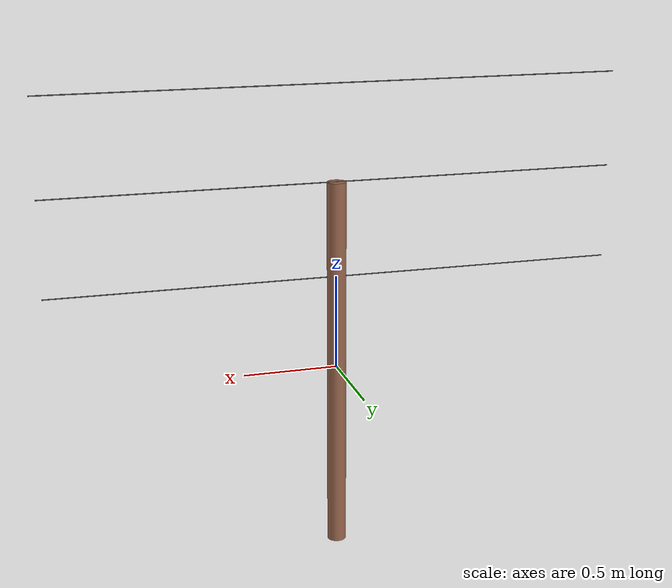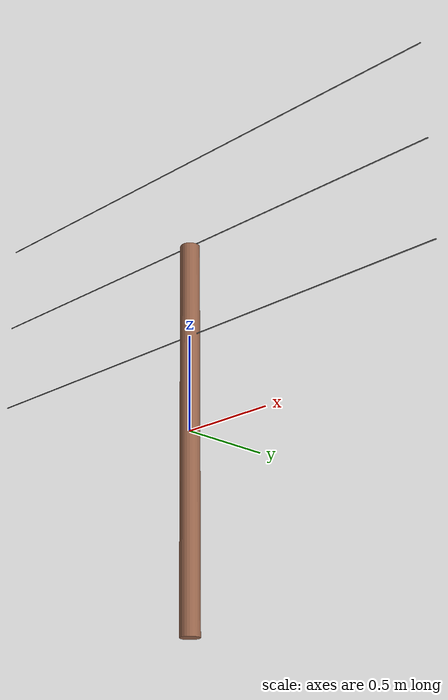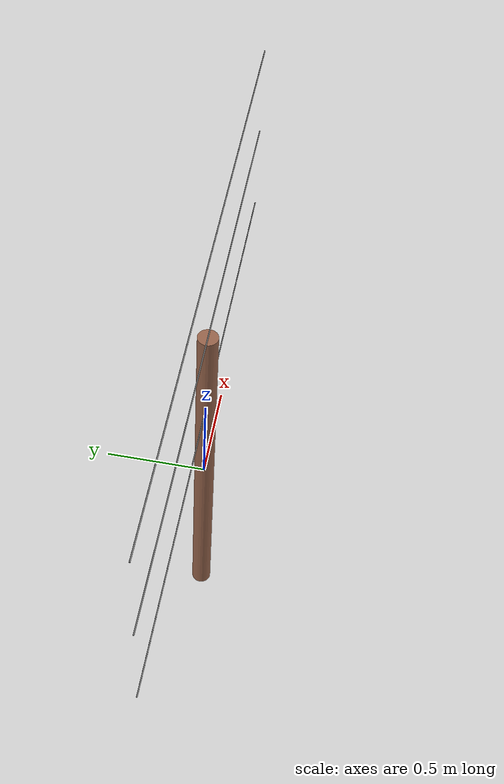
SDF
<?xml version="1.0" ?>
<sdf version="1.8">
  <model name="vineyard_post">
    <static>true</static>
    <link name="post_link">
      <collision name="post_collision">
        <geometry>
          <cylinder>
            <radius>0.05</radius>
            <length>2.0</length>
          </cylinder>
        </geometry>
      </collision>
      <visual name="post_visual">
        <geometry>
          <cylinder>
            <radius>0.05</radius>
            <length>2.0</length>
          </cylinder>
        </geometry>
        <material>
          <ambient>0.4 0.3 0.2 1</ambient>
          <diffuse>0.6 0.4 0.3 1</diffuse>
          <specular>0.1 0.1 0.1 1</specular>
        </material>
      </visual>
    </link>

    <!-- Trellis wires -->
    <link name="wire_low">
      <pose>0 0 0.5 0 1.57 0</pose>
      <collision name="wire_low_collision">
        <geometry>
          <cylinder>
            <radius>0.003</radius>
            <length>3.0</length>
          </cylinder>
        </geometry>
      </collision>
      <visual name="wire_low_visual">
        <geometry>
          <cylinder>
            <radius>0.003</radius>
            <length>3.0</length>
          </cylinder>
        </geometry>
        <material>
          <ambient>0.3 0.3 0.3 1</ambient>
          <diffuse>0.4 0.4 0.4 1</diffuse>
          <specular>0.8 0.8 0.8 1</specular>
        </material>
      </visual>
    </link>

    <link name="wire_mid">
      <pose>0 0 1.0 0 1.57 0</pose>
      <collision name="wire_mid_collision">
        <geometry>
          <cylinder>
            <radius>0.003</radius>
            <length>3.0</length>
          </cylinder>
        </geometry>
      </collision>
      <visual name="wire_mid_visual">
        <geometry>
          <cylinder>
            <radius>0.003</radius>
            <length>3.0</length>
          </cylinder>
        </geometry>
        <material>
          <ambient>0.3 0.3 0.3 1</ambient>
          <diffuse>0.4 0.4 0.4 1</diffuse>
          <specular>0.8 0.8 0.8 1</specular>
        </material>
      </visual>
    </link>

    <link name="wire_high">
      <pose>0 0 1.5 0 1.57 0</pose>
      <collision name="wire_high_collision">
        <geometry>
          <cylinder>
            <radius>0.003</radius>
            <length>3.0</length>
          </cylinder>
        </geometry>
      </collision>
      <visual name="wire_high_visual">
        <geometry>
          <cylinder>
            <radius>0.003</radius>
            <length>3.0</length>
          </cylinder>
        </geometry>
        <material>
          <ambient>0.3 0.3 0.3 1</ambient>
          <diffuse>0.4 0.4 0.4 1</diffuse>
          <specular>0.8 0.8 0.8 1</specular>
        </material>
      </visual>
    </link>

    <!-- Fixed joints to connect wires to post -->
    <joint name="post_to_wire_low" type="fixed">
      <parent>post_link</parent>
      <child>wire_low</child>
    </joint>

    <joint name="post_to_wire_mid" type="fixed">
      <parent>post_link</parent>
      <child>wire_mid</child>
    </joint>

    <joint name="post_to_wire_high" type="fixed">
      <parent>post_link</parent>
      <child>wire_high</child>
    </joint>
  </model>
</sdf>
